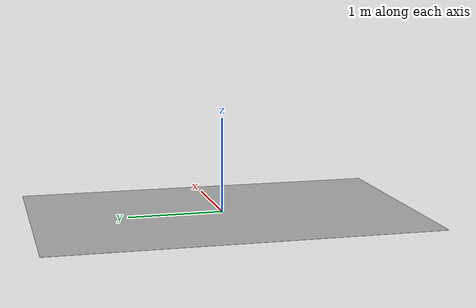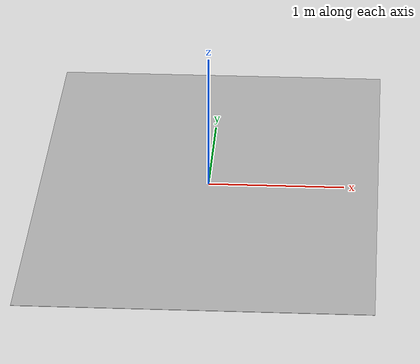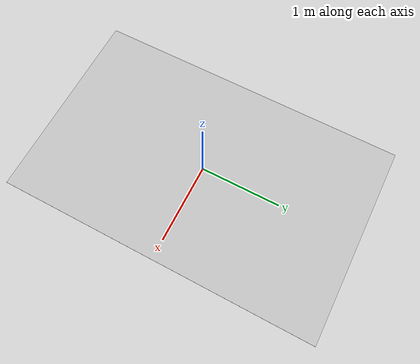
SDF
<?xml version="1.0" encoding="UTF-8"?>
<sdf version="1.6">
   <model name="steerbot_road">
      <static>true</static>
      <link name="link">
         <collision name="collision">
            <geometry>
               <plane>
                  <normal>0 0 1</normal>
                  <size>2.5 4</size>
               </plane>
            </geometry>
            <surface>
               <friction>
                  <ode>
                     <mu>100</mu>
                     <mu2>50</mu2>
                  </ode>
               </friction>
            </surface>
         </collision>
         <visual name="visual">
            <cast_shadows>false</cast_shadows>
            <geometry>
               <plane>
                  <normal>0 0 1</normal>
                  <size>2.5 4</size>
               </plane>
            </geometry>
            <material>
               <script>
                  <uri>model://steerbot_road/materials/scripts</uri>
                  <uri>model://steerbot_road/materials/textures/</uri>
                  <name>RoadSteerbot/Image</name>
               </script>
            </material>
         </visual>
      </link>
   </model>
</sdf>
